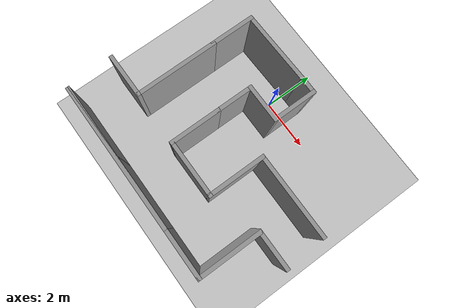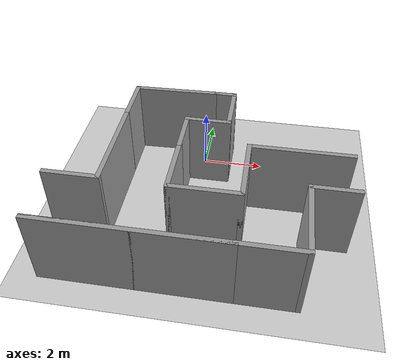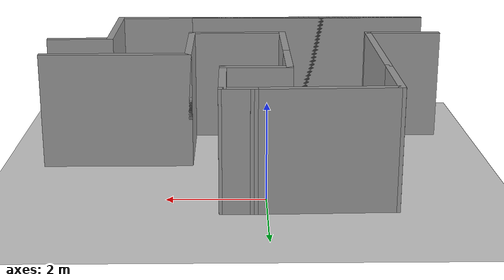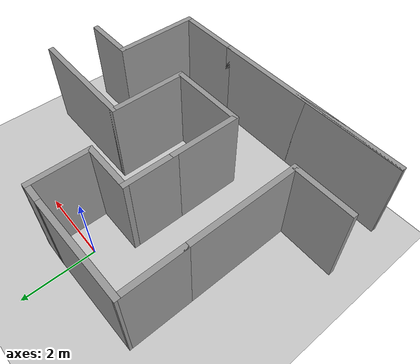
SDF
<sdf version="1.4">
  <world name="default">

    <scene>
      <ambient>0.4 0.4 0.4 1</ambient>
      <background>0.7 0.7 0.7 1</background>
      <shadows>true</shadows>
    </scene>

    <!-- A global light source -->
    <include>
      <uri>model://sun</uri>
    </include>

    <!-- A ground plane -->
    <include>
      <uri>model://ground_plane</uri>
    </include>

    <!-- My maze -->
    <include>
      <uri>model://my_maze</uri>
    </include>

    <physics type="ode">
      <real_time_update_rate>1000.0</real_time_update_rate>
      <max_step_size>0.001</max_step_size>
      <real_time_factor>1</real_time_factor>
      <ode>
        <solver>
          <type>quick</type>
          <iters>150</iters>
          <precon_iters>0</precon_iters>
          <sor>1.400000</sor>
          <use_dynamic_moi_rescaling>1</use_dynamic_moi_rescaling>
        </solver>
        <constraints>
          <cfm>0.00001</cfm>
          <erp>0.2</erp>
          <contact_max_correcting_vel>2000.000000</contact_max_correcting_vel>
          <contact_surface_layer>0.01000</contact_surface_layer>
        </constraints>
      </ode>
    </physics>
  </world>

</sdf>

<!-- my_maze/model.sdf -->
<sdf version='1.6'>
  <model name='my_maze'>
    <pose frame=''>0.35597 -2.5887 0 0 -0 0</pose>
    <link name='Wall_11'>
      <collision name='Wall_11_Collision'>
        <geometry>
          <box>
            <size>2 0.15 2.5</size>
          </box>
        </geometry>
        <pose frame=''>0 0 1.25 0 -0 0</pose>
      </collision>
      <visual name='Wall_11_Visual'>
        <pose frame=''>0 0 1.25 0 -0 0</pose>
        <geometry>
          <box>
            <size>2 0.15 2.5</size>
          </box>
        </geometry>
        <material>
          <script>
            <uri>file://media/materials/scripts/gazebo.material</uri>
            <name>Gazebo/Grey</name>
          </script>
          <ambient>1 1 1 1</ambient>
        </material>
      </visual>
      <pose frame=''>-0.84335 -0.59755 0 0 0 -1.5708</pose>
    </link>
    <link name='Wall_12'>
      <collision name='Wall_12_Collision'>
        <geometry>
          <box>
            <size>2.25 0.15 2.5</size>
          </box>
        </geometry>
        <pose frame=''>0 0 1.25 0 -0 0</pose>
      </collision>
      <visual name='Wall_12_Visual'>
        <pose frame=''>0 0 1.25 0 -0 0</pose>
        <geometry>
          <box>
            <size>2.25 0.15 2.5</size>
          </box>
        </geometry>
        <material>
          <script>
            <uri>file://media/materials/scripts/gazebo.material</uri>
            <name>Gazebo/Grey</name>
          </script>
          <ambient>1 1 1 1</ambient>
        </material>
      </visual>
      <pose frame=''>0.20665 -1.52255 0 0 -0 0</pose>
    </link>
    <link name='Wall_14'>
      <collision name='Wall_14_Collision'>
        <geometry>
          <box>
            <size>5.75 0.15 2.5</size>
          </box>
        </geometry>
        <pose frame=''>0 0 1.25 0 -0 0</pose>
      </collision>
      <visual name='Wall_14_Visual'>
        <pose frame=''>0 0 1.25 0 -0 0</pose>
        <geometry>
          <box>
            <size>5.75 0.15 2.5</size>
          </box>
        </geometry>
        <material>
          <script>
            <uri>file://media/materials/scripts/gazebo.material</uri>
            <name>Gazebo/Grey</name>
          </script>
          <ambient>1 1 1 1</ambient>
        </material>
      </visual>
      <pose frame=''>-1.55426 -3.27957 0 0 -0 0</pose>
    </link>
    <link name='Wall_15'>
      <collision name='Wall_15_Collision'>
        <geometry>
          <box>
            <size>5.75 0.15 2.5</size>
          </box>
        </geometry>
        <pose frame=''>0 0 1.25 0 -0 0</pose>
      </collision>
      <visual name='Wall_15_Visual'>
        <pose frame=''>0 0 1.25 0 -0 0</pose>
        <geometry>
          <box>
            <size>5.75 0.15 2.5</size>
          </box>
        </geometry>
        <material>
          <script>
            <uri>file://media/materials/scripts/gazebo.material</uri>
            <name>Gazebo/Grey</name>
          </script>
          <ambient>1 1 1 1</ambient>
        </material>
      </visual>
      <pose frame=''>-1.55426 -3.27957 0 0 -0 3.14159</pose>
    </link>
    <link name='Wall_19'>
      <collision name='Wall_19_Collision'>
        <geometry>
          <box>
            <size>1.75 0.15 2.5</size>
          </box>
        </geometry>
        <pose frame=''>0 0 1.25 0 -0 0</pose>
      </collision>
      <visual name='Wall_19_Visual'>
        <pose frame=''>0 0 1.25 0 -0 0</pose>
        <geometry>
          <box>
            <size>1.75 0.15 2.5</size>
          </box>
        </geometry>
        <material>
          <script>
            <uri>file://media/materials/scripts/gazebo.material</uri>
            <name>Gazebo/Grey</name>
          </script>
          <ambient>1 1 1 1</ambient>
        </material>
      </visual>
      <pose frame=''>-2.84574 2.40802 0 0 -0 1.5708</pose>
    </link>
    <link name='Wall_2'>
      <collision name='Wall_2_Collision'>
        <geometry>
          <box>
            <size>0.75 0.15 2.5</size>
          </box>
        </geometry>
        <pose frame=''>0 0 1.25 0 -0 0</pose>
      </collision>
      <visual name='Wall_2_Visual'>
        <pose frame=''>0 0 1.25 0 -0 0</pose>
        <geometry>
          <box>
            <size>0.75 0.15 2.5</size>
          </box>
        </geometry>
        <material>
          <script>
            <uri>file://media/materials/scripts/gazebo.material</uri>
            <name>Gazebo/Grey</name>
          </script>
          <ambient>1 1 1 1</ambient>
        </material>
      </visual>
      <pose frame=''>0.20684 3.27758 0 0 0 -0.000419</pose>
    </link>
    <link name='Wall_23'>
      <collision name='Wall_23_Collision'>
        <geometry>
          <box>
            <size>2.90365 0.15 2.5</size>
          </box>
        </geometry>
        <pose frame=''>0 0 1.25 0 -0 0</pose>
      </collision>
      <visual name='Wall_23_Visual'>
        <pose frame=''>0 0 1.25 0 -0 0</pose>
        <geometry>
          <box>
            <size>2.90365 0.15 2.5</size>
          </box>
        </geometry>
        <material>
          <script>
            <uri>file://media/materials/scripts/gazebo.material</uri>
            <name>Gazebo/Grey</name>
          </script>
          <ambient>1 1 1 1</ambient>
        </material>
      </visual>
      <pose frame=''>-1.46935 3.24286 0 0 -0 0.025306</pose>
    </link>
    <link name='Wall_26'>
      <collision name='Wall_26_Collision'>
        <geometry>
          <box>
            <size>2.25 0.15 2.5</size>
          </box>
        </geometry>
        <pose frame=''>0 0 1.25 0 -0 0</pose>
      </collision>
      <visual name='Wall_26_Visual'>
        <pose frame=''>0 0 1.25 0 -0 0</pose>
        <geometry>
          <box>
            <size>2.25 0.15 2.5</size>
          </box>
        </geometry>
        <material>
          <script>
            <uri>file://media/materials/scripts/gazebo.material</uri>
            <name>Gazebo/Grey</name>
          </script>
          <ambient>1 1 1 1</ambient>
        </material>
      </visual>
      <pose frame=''>1.25665 -0.47255 0 0 -0 1.5708</pose>
    </link>
    <link name='Wall_27'>
      <collision name='Wall_27_Collision'>
        <geometry>
          <box>
            <size>3.25 0.15 2.5</size>
          </box>
        </geometry>
        <pose frame=''>0 0 1.25 0 -0 0</pose>
      </collision>
      <visual name='Wall_27_Visual'>
        <pose frame=''>0 0 1.25 0 -0 0</pose>
        <geometry>
          <box>
            <size>3.25 0.15 2.5</size>
          </box>
        </geometry>
        <material>
          <script>
            <uri>file://media/materials/scripts/gazebo.material</uri>
            <name>Gazebo/Grey</name>
          </script>
          <ambient>1 1 1 1</ambient>
        </material>
      </visual>
      <pose frame=''>2.80665 0.57745 0 0 -0 0</pose>
    </link>
    <link name='Wall_29'>
      <collision name='Wall_29_Collision'>
        <geometry>
          <box>
            <size>2 0.15 2.5</size>
          </box>
        </geometry>
        <pose frame=''>0 0 1.25 0 -0 0</pose>
      </collision>
      <visual name='Wall_29_Visual'>
        <pose frame=''>0 0 1.25 0 -0 0</pose>
        <geometry>
          <box>
            <size>2 0.15 2.5</size>
          </box>
        </geometry>
        <material>
          <script>
            <uri>file://media/materials/scripts/gazebo.material</uri>
            <name>Gazebo/Grey</name>
          </script>
          <ambient>1 1 1 1</ambient>
        </material>
      </visual>
      <pose frame=''>2.17074 -3.27957 0 0 -0 0</pose>
    </link>
    <link name='Wall_3'>
      <collision name='Wall_3_Collision'>
        <geometry>
          <box>
            <size>1.75 0.15 2.5</size>
          </box>
        </geometry>
        <pose frame=''>0 0 1.25 0 -0 0</pose>
      </collision>
      <visual name='Wall_3_Visual'>
        <pose frame=''>0 0 1.25 0 -0 0</pose>
        <geometry>
          <box>
            <size>1.75 0.15 2.5</size>
          </box>
        </geometry>
        <material>
          <script>
            <uri>file://media/materials/scripts/gazebo.material</uri>
            <name>Gazebo/Grey</name>
          </script>
          <ambient>1 1 1 1</ambient>
        </material>
      </visual>
      <pose frame=''>0.50665 2.47745 0 0 0 -1.5708</pose>
    </link>
    <link name='Wall_30'>
      <collision name='Wall_30_Collision'>
        <geometry>
          <box>
            <size>2.5 0.15 2.5</size>
          </box>
        </geometry>
        <pose frame=''>0 0 1.25 0 -0 0</pose>
      </collision>
      <visual name='Wall_30_Visual'>
        <pose frame=''>0 0 1.25 0 -0 0</pose>
        <geometry>
          <box>
            <size>2.5 0.15 2.5</size>
          </box>
        </geometry>
        <material>
          <script>
            <uri>file://media/materials/scripts/gazebo.material</uri>
            <name>Gazebo/Grey</name>
          </script>
          <ambient>1 1 1 1</ambient>
        </material>
      </visual>
      <pose frame=''>3.09574 -2.10458 0 0 -0 1.5708</pose>
    </link>
    <link name='Wall_31'>
      <collision name='Wall_31_Collision'>
        <geometry>
          <box>
            <size>1.5 0.15 2.5</size>
          </box>
        </geometry>
        <pose frame=''>0 0 1.25 0 -0 0</pose>
      </collision>
      <visual name='Wall_31_Visual'>
        <pose frame=''>0 0 1.25 0 -0 0</pose>
        <geometry>
          <box>
            <size>1.5 0.15 2.5</size>
          </box>
        </geometry>
        <material>
          <script>
            <uri>file://media/materials/scripts/gazebo.material</uri>
            <name>Gazebo/Grey</name>
          </script>
          <ambient>1 1 1 1</ambient>
        </material>
      </visual>
      <pose frame=''>3.77074 -0.929575 0 0 -0 0</pose>
    </link>
    <link name='Wall_4'>
      <collision name='Wall_4_Collision'>
        <geometry>
          <box>
            <size>1.5 0.15 2.5</size>
          </box>
        </geometry>
        <pose frame=''>0 0 1.25 0 -0 0</pose>
      </collision>
      <visual name='Wall_4_Visual'>
        <pose frame=''>0 0 1.25 0 -0 0</pose>
        <geometry>
          <box>
            <size>1.5 0.15 2.5</size>
          </box>
        </geometry>
        <material>
          <script>
            <uri>file://media/materials/scripts/gazebo.material</uri>
            <name>Gazebo/Grey</name>
          </script>
          <ambient>1 1 1 1</ambient>
        </material>
      </visual>
      <pose frame=''>-0.16835 1.67745 0 0 -0 3.14159</pose>
    </link>
    <link name='Wall_5'>
      <collision name='Wall_5_Collision'>
        <geometry>
          <box>
            <size>1.5 0.15 2.5</size>
          </box>
        </geometry>
        <pose frame=''>0 0 1.25 0 -0 0</pose>
      </collision>
      <visual name='Wall_5_Visual'>
        <pose frame=''>0 0 1.25 0 -0 0</pose>
        <geometry>
          <box>
            <size>1.5 0.15 2.5</size>
          </box>
        </geometry>
        <material>
          <script>
            <uri>file://media/materials/scripts/gazebo.material</uri>
            <name>Gazebo/Grey</name>
          </script>
          <ambient>1 1 1 1</ambient>
        </material>
      </visual>
      <pose frame=''>-0.84335 1.00245 0 0 0 -1.5708</pose>
    </link>
    <link name='Wall_8'>
      <collision name='Wall_8_Collision'>
        <geometry>
          <box>
            <size>3.25 0.15 2.5</size>
          </box>
        </geometry>
        <pose frame=''>0 0 1.25 0 -0 0</pose>
      </collision>
      <visual name='Wall_8_Visual'>
        <pose frame=''>0 0 1.25 0 -0 0</pose>
        <geometry>
          <box>
            <size>3.25 0.15 2.5</size>
          </box>
        </geometry>
        <material>
          <script>
            <uri>file://media/materials/scripts/gazebo.material</uri>
            <name>Gazebo/Grey</name>
          </script>
          <ambient>1 1 1 1</ambient>
        </material>
      </visual>
      <pose frame=''>-2.84574 0.058023 0 0 0 -1.5708</pose>
    </link>
    <link name='Wall_9'>
      <collision name='Wall_9_Collision'>
        <geometry>
          <box>
            <size>1.75 0.15 2.5</size>
          </box>
        </geometry>
        <pose frame=''>0 0 1.25 0 -0 0</pose>
      </collision>
      <visual name='Wall_9_Visual'>
        <pose frame=''>0 0 1.25 0 -0 0</pose>
        <geometry>
          <box>
            <size>1.75 0.15 2.5</size>
          </box>
        </geometry>
        <material>
          <script>
            <uri>file://media/materials/scripts/gazebo.material</uri>
            <name>Gazebo/Grey</name>
          </script>
          <ambient>1 1 1 1</ambient>
        </material>
      </visual>
      <pose frame=''>-3.64574 -1.49198 0 0 -0 3.14159</pose>
    </link>
    <static>1</static>
  </model>
</sdf>
